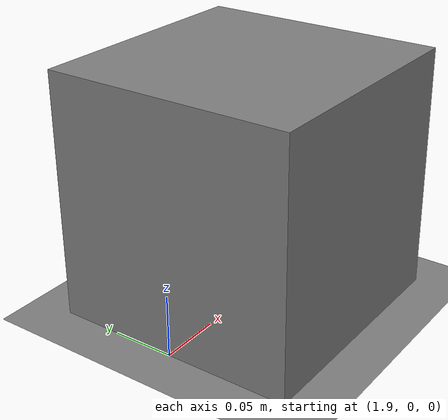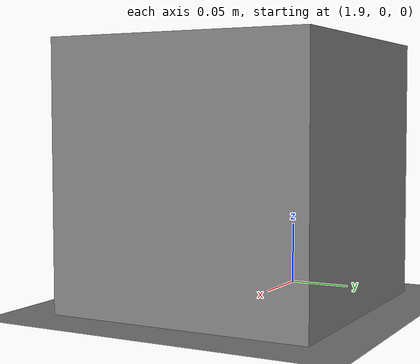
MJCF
<mujoco model="box">
  <option timestep="0.01" integrator="RK4">
    <flag contact="disable" energy="enable"/>
  </option>

  <worldbody>
    <light name="light" pos="0 0 6"/>
    <camera name="fixed" pos="0 -4 1" zaxis="0 -1 0"/>
    <camera name="lookatcart" mode="targetbody" target="cart" pos="0 -2 2"/>
    <geom name="floor" pos="0 0 0" size="4 4 .2" type="plane"/>
    <body name="cart" pos="2 0 0.1">
      <geom name="cart" type="box" size="0.1 0.1 0.1" mass="1"/>
      <joint name='slider' type='slide' pos='0 0 0' axis='1 0 0' />
    </body>
  </worldbody>

  <actuator>
    <motor name="slide" joint="slider" gear="10" ctrllimited="true" ctrlrange="-1 1" />
  </actuator>
</mujoco>
